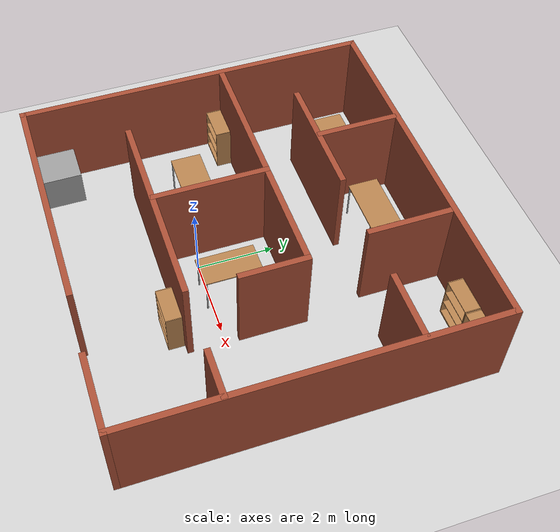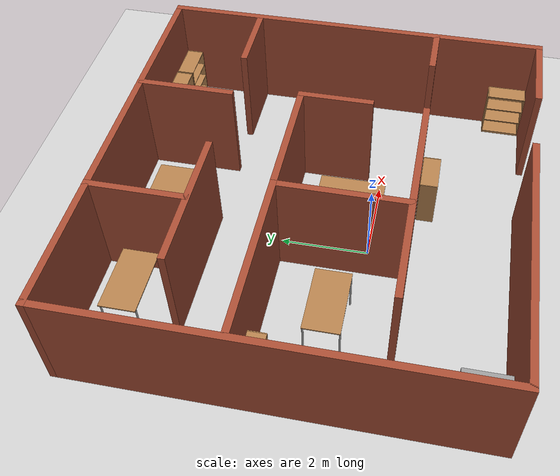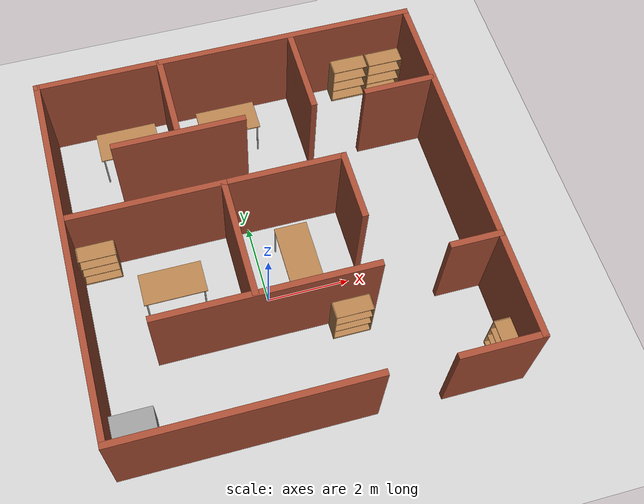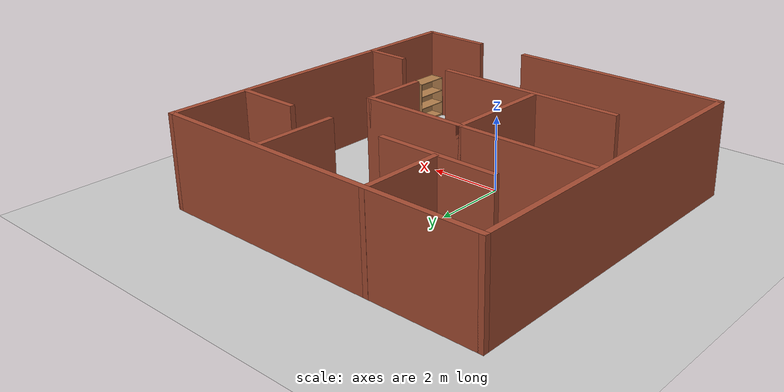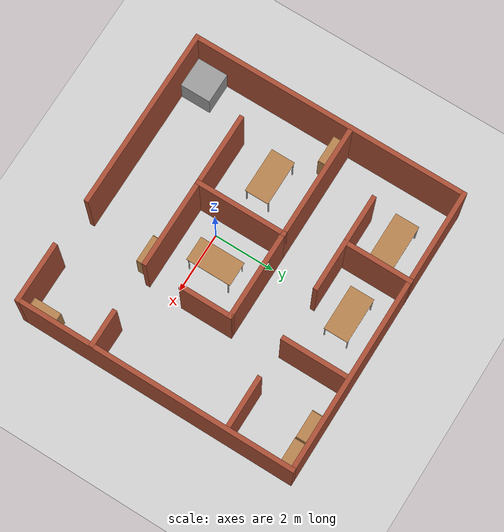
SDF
<sdf version="1.6">
 <world name="default">
  <light name="sun" type="directional">
   <pose>0 0 10 0 -0 0</pose>
   <diffuse>0.8 0.8 0.8 1</diffuse>
   <specular>0.2 0.2 0.2 1</specular>
   <attenuation>
    <range>1000</range>
    <constant>0.9</constant>
    <linear>0.01</linear>
    <quadratic>0.001</quadratic>
   </attenuation>
   <direction>-0.5 0.1 -0.9</direction>
  </light>
  <model name="ground_plane">
   <static>1</static>
   <link name="link">
    <collision name="collision">
     <geometry><plane><normal>0 0 1</normal><size>100 100</size></plane></geometry>
     <surface>
      <contact><collide_bitmask>65535</collide_bitmask></contact>
      <friction><ode><mu>100</mu><mu2>50</mu2></ode></friction>
     </surface>
    </collision>
    <visual name="visual">
     <cast_shadows>0</cast_shadows>
     <geometry><plane><normal>0 0 1</normal><size>100 100</size></plane></geometry>
     <material>
      <script><uri>file://media/materials/scripts/gazebo.material</uri><name>Gazebo/Grey</name></script>
     </material>
    </visual>
   </link>
  </model>
  <gravity>0 0 -9.8</gravity>
  <magnetic_field>6e-06 2.3e-05 -4.2e-05</magnetic_field>
  <atmosphere type="adiabatic"/>
  <physics name="default_physics" default="0" type="ode">
   <max_step_size>0.001</max_step_size>
   <real_time_factor>1</real_time_factor>
   <real_time_update_rate>1000</real_time_update_rate>
  </physics>
  <scene><ambient>0.4 0.4 0.4 1</ambient><background>0.7 0.7 0.7 1</background><shadows>1</shadows></scene>
  <audio><device>default</device></audio>
  <spherical_coordinates>
   <surface_model>EARTH_WGS84</surface_model>
   <latitude_deg>0</latitude_deg>
   <longitude_deg>0</longitude_deg>
   <elevation>0</elevation>
   <heading_deg>0</heading_deg>
  </spherical_coordinates>
  <model name="environment2">
   <pose>0.427414 1.20836 -0 0 -0 0</pose>
   <link name="Wall_1">
    <collision name="Wall_1_Collision">
     <geometry><box><size>6 0.15 2.5</size></box></geometry>
     <pose>0 0 1.25 0 -0 0</pose>
    </collision>
    <visual name="Wall_1_Visual">
     <pose>0 0 1.25 0 -0 0</pose>
     <geometry><box><size>6 0.15 2.5</size></box></geometry>
     <material>
      <script><uri>file://media/materials/scripts/gazebo.material</uri><name>Gazebo/Bricks</name></script>
      <ambient>1 1 1 1</ambient>
     </material>
     <meta><layer>0</layer></meta>
    </visual>
    <pose>-1.75 -4.50149 0 0 -0 0</pose>
   </link>
   <link name="Wall_14">
    <collision name="Wall_14_Collision">
     <geometry><box><size>9.5 0.15 2.5</size></box></geometry>
     <pose>0 0 1.25 0 -0 0</pose>
    </collision>
    <visual name="Wall_14_Visual">
     <pose>0 0 1.25 0 -0 0</pose>
     <geometry><box><size>9.5 0.15 2.5</size></box></geometry>
     <material>
      <script><uri>file://media/materials/scripts/gazebo.material</uri><name>Gazebo/Bricks</name></script>
      <ambient>1 1 1 1</ambient>
     </material>
     <meta><layer>0</layer></meta>
    </visual>
    <pose>-0 4.54851 0 0 -0 0</pose>
   </link>
   <link name="Wall_15">
    <collision name="Wall_15_Collision">
     <geometry><box><size>9.25 0.15 2.5</size></box></geometry>
     <pose>0 0 1.25 0 -0 0</pose>
    </collision>
    <visual name="Wall_15_Visual">
     <pose>0 0 1.25 0 -0 0</pose>
     <geometry><box><size>9.25 0.15 2.5</size></box></geometry>
     <material>
      <script><uri>file://media/materials/scripts/gazebo.material</uri><name>Gazebo/Bricks</name></script>
      <ambient>1 1 1 1</ambient>
     </material>
     <meta><layer>0</layer></meta>
    </visual>
    <pose>4.675 -0.001489 0 0 -0 -1.5708</pose>
   </link>
   <link name="Wall_16">
    <collision name="Wall_16_Collision">
     <geometry><box><size>2 0.15 2.5</size></box></geometry>
     <pose>0 0 1.25 0 -0 0</pose>
    </collision>
    <visual name="Wall_16_Visual">
     <pose>0 0 1.25 0 -0 0</pose>
     <geometry><box><size>2 0.15 2.5</size></box></geometry>
     <material>
      <script><uri>file://media/materials/scripts/gazebo.material</uri><name>Gazebo/Bricks</name></script>
      <ambient>1 1 1 1</ambient>
     </material>
     <meta><layer>0</layer></meta>
    </visual>
    <pose>3.75 -4.55149 0 0 -0 3.14159</pose>
   </link>
   <link name="Wall_19">
    <collision name="Wall_19_Collision">
     <geometry><box><size>3.75 0.15 2.5</size></box></geometry>
     <pose>0 0 1.25 0 -0 0</pose>
    </collision>
    <visual name="Wall_19_Visual">
     <pose>0 0 1.25 0 -0 0</pose>
     <geometry><box><size>3.75 0.15 2.5</size></box></geometry>
     <material>
      <script><uri>file://media/materials/scripts/gazebo.material</uri><name>Gazebo/Bricks</name></script>
      <ambient>1 1 1 1</ambient>
     </material>
     <meta><layer>0</layer></meta>
    </visual>
    <pose>-2.73858 0.787888 0 0 -0 0</pose>
   </link>
   <link name="Wall_20">
    <collision name="Wall_20_Collision">
     <geometry><box><size>3 0.15 2.5</size></box></geometry>
     <pose>0 0 1.25 0 -0 0</pose>
    </collision>
    <visual name="Wall_20_Visual">
     <pose>0 0 1.25 0 -0 0</pose>
     <geometry><box><size>3 0.15 2.5</size></box></geometry>
     <material>
      <script><uri>file://media/materials/scripts/gazebo.material</uri><name>Gazebo/Bricks</name></script>
      <ambient>1 1 1 1</ambient>
     </material>
     <meta><layer>0</layer></meta>
    </visual>
    <pose>-0.938579 -0.637112 0 0 -0 -1.5708</pose>
   </link>
   <link name="Wall_36">
    <collision name="Wall_36_Collision">
     <geometry><box><size>1.25 0.15 2.5</size></box></geometry>
     <pose>0 0 1.25 0 -0 0</pose>
    </collision>
    <visual name="Wall_36_Visual">
     <pose>0 0 1.25 0 -0 0</pose>
     <geometry><box><size>1.25 0.15 2.5</size></box></geometry>
     <material>
      <script><uri>file://media/materials/scripts/gazebo.material</uri><name>Gazebo/Bricks</name></script>
      <ambient>1 1 1 1</ambient>
     </material>
     <meta><layer>0</layer></meta>
    </visual>
    <pose>4.10191 -2.0643 0 0 -0 3.14159</pose>
   </link>
   <link name="Wall_38">
    <collision name="Wall_38_Collision">
     <geometry><box><size>3 0.15 2.5</size></box></geometry>
     <pose>0 0 1.25 0 -0 0</pose>
    </collision>
    <visual name="Wall_38_Visual">
     <pose>0 0 1.25 0 -0 0</pose>
     <geometry><box><size>3 0.15 2.5</size></box></geometry>
     <material>
      <script><uri>file://media/materials/scripts/gazebo.material</uri><name>Gazebo/Bricks</name></script>
      <ambient>1 1 1 1</ambient>
     </material>
     <meta><layer>0</layer></meta>
    </visual>
    <pose>0.486421 0.787888 0 0 -0 0</pose>
   </link>
   <link name="Wall_39">
    <collision name="Wall_39_Collision">
     <geometry><box><size>1.75 0.15 2.5</size></box></geometry>
     <pose>0 0 1.25 0 -0 0</pose>
    </collision>
    <visual name="Wall_39_Visual">
     <pose>0 0 1.25 0 -0 0</pose>
     <geometry><box><size>1.75 0.15 2.5</size></box></geometry>
     <material>
      <script><uri>file://media/materials/scripts/gazebo.material</uri><name>Gazebo/Bricks</name></script>
      <ambient>1 1 1 1</ambient>
     </material>
     <meta><layer>0</layer></meta>
    </visual>
    <pose>1.91142 -0.012112 0 0 -0 -1.5708</pose>
   </link>
   <link name="Wall_41">
    <collision name="Wall_41_Collision">
     <geometry><box><size>2.25 0.15 2.5</size></box></geometry>
     <pose>0 0 1.25 0 -0 0</pose>
    </collision>
    <visual name="Wall_41_Visual">
     <pose>0 0 1.25 0 -0 0</pose>
     <geometry><box><size>2.25 0.15 2.5</size></box></geometry>
     <material>
      <script><uri>file://media/materials/scripts/gazebo.material</uri><name>Gazebo/Bricks</name></script>
      <ambient>1 1 1 1</ambient>
     </material>
     <meta><layer>0</layer></meta>
    </visual>
    <pose>1.65155 3.45523 0 0 -0 -1.5708</pose>
   </link>
   <link name="Wall_43">
    <collision name="Wall_43_Collision">
     <geometry><box><size>1.75 0.15 2.5</size></box></geometry>
     <pose>0 0 1.25 0 -0 0</pose>
    </collision>
    <visual name="Wall_43_Visual">
     <pose>0 0 1.25 0 -0 0</pose>
     <geometry><box><size>1.75 0.15 2.5</size></box></geometry>
     <material>
      <script><uri>file://media/materials/scripts/gazebo.material</uri><name>Gazebo/Bricks</name></script>
      <ambient>1 1 1 1</ambient>
     </material>
     <meta><layer>0</layer></meta>
    </visual>
    <pose>3.80155 2.40523 0 0 -0 0</pose>
   </link>
   <link name="Wall_45">
    <collision name="Wall_45_Collision">
     <geometry><box><size>2.25 0.15 2.5</size></box></geometry>
     <pose>0 0 1.25 0 -0 0</pose>
    </collision>
    <visual name="Wall_45_Visual">
     <pose>0 0 1.25 0 -0 0</pose>
     <geometry><box><size>2.25 0.15 2.5</size></box></geometry>
     <material>
      <script><uri>file://media/materials/scripts/gazebo.material</uri><name>Gazebo/Bricks</name></script>
      <ambient>1 1 1 1</ambient>
     </material>
     <meta><layer>0</layer></meta>
    </visual>
    <pose>-1.65613 3.50149 0 0 -0 -1.5708</pose>
   </link>
   <link name="Wall_50">
    <collision name="Wall_50_Collision">
     <geometry><box><size>5.25 0.15 2.5</size></box></geometry>
     <pose>0 0 1.25 0 -0 0</pose>
    </collision>
    <visual name="Wall_50_Visual">
     <pose>0 0 1.25 0 -0 0</pose>
     <geometry><box><size>5.25 0.15 2.5</size></box></geometry>
     <material>
      <script><uri>file://media/materials/scripts/gazebo.material</uri><name>Gazebo/Bricks</name></script>
      <ambient>1 1 1 1</ambient>
     </material>
     <meta><layer>0</layer></meta>
    </visual>
    <pose>-0.679007 -2.08699 0 0 -0 0</pose>
   </link>
   <link name="Wall_55">
    <collision name="Wall_55_Collision">
     <geometry><box><size>3.25 0.15 2.5</size></box></geometry>
     <pose>0 0 1.25 0 -0 0</pose>
    </collision>
    <visual name="Wall_55_Visual">
     <pose>0 0 1.25 0 -0 0</pose>
     <geometry><box><size>3.25 0.15 2.5</size></box></geometry>
     <material>
      <script><uri>file://media/materials/scripts/gazebo.material</uri><name>Gazebo/Bricks</name></script>
      <ambient>1 1 1 1</ambient>
     </material>
     <meta><layer>0</layer></meta>
    </visual>
    <pose>-1.63873 2.40798 0 0 -0 0</pose>
   </link>
   <link name="Wall_6">
    <collision name="Wall_6_Collision">
     <geometry><box><size>9.2 0.15 2.5</size></box></geometry>
     <pose>0 0 1.25 0 -0 0</pose>
    </collision>
    <visual name="Wall_6_Visual">
     <pose>0 0 1.25 0 -0 0</pose>
     <geometry><box><size>9.2 0.15 2.5</size></box></geometry>
     <material>
      <script><uri>file://media/materials/scripts/gazebo.material</uri><name>Gazebo/Bricks</name></script>
      <ambient>1 1 1 1</ambient>
     </material>
     <meta><layer>0</layer></meta>
    </visual>
    <pose>-4.675 0.023511 0 0 -0 -1.5708</pose>
   </link>
   <static>1</static>
  </model>
  <model name="bookshelf">
   <static>1</static>
   <link name="link">
    <inertial><mass>1</mass></inertial>
    <collision name="back">
     <pose>0 0.005 0.6 0 -0 0</pose>
     <geometry><box><size>0.9 0.01 1.2</size></box></geometry>
    </collision>
    <visual name="visual1">
     <pose>0 0.005 0.6 0 -0 0</pose>
     <geometry><box><size>0.9 0.01 1.2</size></box></geometry>
     <material>
      <script><uri>file://media/materials/scripts/gazebo.material</uri><name>Gazebo/Wood</name></script>
     </material>
    </visual>
    <collision name="left_side">
     <pose>0.45 -0.195 0.6 0 -0 0</pose>
     <geometry><box><size>0.02 0.4 1.2</size></box></geometry>
    </collision>
    <visual name="visual2">
     <pose>0.45 -0.195 0.6 0 -0 0</pose>
     <geometry><box><size>0.02 0.4 1.2</size></box></geometry>
     <material>
      <script><uri>file://media/materials/scripts/gazebo.material</uri><name>Gazebo/Wood</name></script>
     </material>
    </visual>
    <collision name="right_side">
     <pose>-0.45 -0.195 0.6 0 -0 0</pose>
     <geometry><box><size>0.02 0.4 1.2</size></box></geometry>
    </collision>
    <visual name="visual3">
     <pose>-0.45 -0.195 0.6 0 -0 0</pose>
     <geometry><box><size>0.02 0.4 1.2</size></box></geometry>
     <material>
      <script><uri>file://media/materials/scripts/gazebo.material</uri><name>Gazebo/Wood</name></script>
     </material>
    </visual>
    <collision name="bottom">
     <pose>0 -0.195 0.03 0 -0 0</pose>
     <geometry><box><size>0.88 0.4 0.06</size></box></geometry>
    </collision>
    <visual name="visual4">
     <pose>0 -0.195 0.03 0 -0 0</pose>
     <geometry><box><size>0.88 0.4 0.06</size></box></geometry>
     <material>
      <script><uri>file://media/materials/scripts/gazebo.material</uri><name>Gazebo/Wood</name></script>
     </material>
    </visual>
    <collision name="top">
     <pose>0 -0.195 1.19 0 -0 0</pose>
     <geometry><box><size>0.88 0.4 0.02</size></box></geometry>
    </collision>
    <visual name="visual5">
     <pose>0 -0.195 1.19 0 -0 0</pose>
     <geometry><box><size>0.88 0.4 0.02</size></box></geometry>
     <material>
      <script><uri>file://media/materials/scripts/gazebo.material</uri><name>Gazebo/Wood</name></script>
     </material>
    </visual>
    <collision name="low_shelf">
     <pose>0 -0.195 0.43 0 -0 0</pose>
     <geometry><box><size>0.88 0.4 0.02</size></box></geometry>
    </collision>
    <visual name="visual6">
     <pose>0 -0.195 0.43 0 -0 0</pose>
     <geometry><box><size>0.88 0.4 0.02</size></box></geometry>
     <material>
      <script><uri>file://media/materials/scripts/gazebo.material</uri><name>Gazebo/Wood</name></script>
     </material>
    </visual>
    <collision name="high_shelf">
     <pose>0 -0.195 0.8 0 -0 0</pose>
     <geometry><box><size>0.88 0.4 0.02</size></box></geometry>
    </collision>
    <visual name="visual7">
     <pose>0 -0.195 0.8 0 -0 0</pose>
     <geometry><box><size>0.88 0.4 0.02</size></box></geometry>
     <material>
      <script><uri>file://media/materials/scripts/gazebo.material</uri><name>Gazebo/Wood</name></script>
     </material>
    </visual>
   </link>
   <pose>4.56216 5.65941 -0 0 -0 0</pose>
  </model>
  <model name="bookshelf_0">
   <static>1</static>
   <link name="link">
    <inertial><mass>1</mass></inertial>
    <collision name="back">
     <pose>0 0.005 0.6 0 -0 0</pose>
     <geometry><box><size>0.9 0.01 1.2</size></box></geometry>
    </collision>
    <visual name="visual1">
     <pose>0 0.005 0.6 0 -0 0</pose>
     <geometry><box><size>0.9 0.01 1.2</size></box></geometry>
     <material>
      <script><uri>file://media/materials/scripts/gazebo.material</uri><name>Gazebo/Wood</name></script>
     </material>
    </visual>
    <collision name="left_side">
     <pose>0.45 -0.195 0.6 0 -0 0</pose>
     <geometry><box><size>0.02 0.4 1.2</size></box></geometry>
    </collision>
    <visual name="visual2">
     <pose>0.45 -0.195 0.6 0 -0 0</pose>
     <geometry><box><size>0.02 0.4 1.2</size></box></geometry>
     <material>
      <script><uri>file://media/materials/scripts/gazebo.material</uri><name>Gazebo/Wood</name></script>
     </material>
    </visual>
    <collision name="right_side">
     <pose>-0.45 -0.195 0.6 0 -0 0</pose>
     <geometry><box><size>0.02 0.4 1.2</size></box></geometry>
    </collision>
    <visual name="visual3">
     <pose>-0.45 -0.195 0.6 0 -0 0</pose>
     <geometry><box><size>0.02 0.4 1.2</size></box></geometry>
     <material>
      <script><uri>file://media/materials/scripts/gazebo.material</uri><name>Gazebo/Wood</name></script>
     </material>
    </visual>
    <collision name="bottom">
     <pose>0 -0.195 0.03 0 -0 0</pose>
     <geometry><box><size>0.88 0.4 0.06</size></box></geometry>
    </collision>
    <visual name="visual4">
     <pose>0 -0.195 0.03 0 -0 0</pose>
     <geometry><box><size>0.88 0.4 0.06</size></box></geometry>
     <material>
      <script><uri>file://media/materials/scripts/gazebo.material</uri><name>Gazebo/Wood</name></script>
     </material>
    </visual>
    <collision name="top">
     <pose>0 -0.195 1.19 0 -0 0</pose>
     <geometry><box><size>0.88 0.4 0.02</size></box></geometry>
    </collision>
    <visual name="visual5">
     <pose>0 -0.195 1.19 0 -0 0</pose>
     <geometry><box><size>0.88 0.4 0.02</size></box></geometry>
     <material>
      <script><uri>file://media/materials/scripts/gazebo.material</uri><name>Gazebo/Wood</name></script>
     </material>
    </visual>
    <collision name="low_shelf">
     <pose>0 -0.195 0.43 0 -0 0</pose>
     <geometry><box><size>0.88 0.4 0.02</size></box></geometry>
    </collision>
    <visual name="visual6">
     <pose>0 -0.195 0.43 0 -0 0</pose>
     <geometry><box><size>0.88 0.4 0.02</size></box></geometry>
     <material>
      <script><uri>file://media/materials/scripts/gazebo.material</uri><name>Gazebo/Wood</name></script>
     </material>
    </visual>
    <collision name="high_shelf">
     <pose>0 -0.195 0.8 0 -0 0</pose>
     <geometry><box><size>0.88 0.4 0.02</size></box></geometry>
    </collision>
    <visual name="visual7">
     <pose>0 -0.195 0.8 0 -0 0</pose>
     <geometry><box><size>0.88 0.4 0.02</size></box></geometry>
     <material>
      <script><uri>file://media/materials/scripts/gazebo.material</uri><name>Gazebo/Wood</name></script>
     </material>
    </visual>
   </link>
   <pose>3.6217 5.66796 0 0 -0 0</pose>
  </model>
  <model name="table">
   <static>1</static>
   <link name="link">
    <collision name="surface">
     <pose>0 0 1 0 -0 0</pose>
     <geometry><box><size>1.5 0.8 0.03</size></box></geometry>
     <surface><friction><ode><mu>0.6</mu><mu2>0.6</mu2></ode></friction></surface>
    </collision>
    <visual name="visual1">
     <pose>0 0 1 0 -0 0</pose>
     <geometry><box><size>1.5 0.8 0.03</size></box></geometry>
     <material>
      <script><uri>file://media/materials/scripts/gazebo.material</uri><name>Gazebo/Wood</name></script>
     </material>
    </visual>
    <collision name="front_left_leg">
     <pose>0.68 0.38 0.5 0 -0 0</pose>
     <geometry><cylinder><radius>0.02</radius><length>1</length></cylinder></geometry>
    </collision>
    <visual name="front_left_leg">
     <pose>0.68 0.38 0.5 0 -0 0</pose>
     <geometry><cylinder><radius>0.02</radius><length>1</length></cylinder></geometry>
     <material>
      <script><uri>file://media/materials/scripts/gazebo.material</uri><name>Gazebo/Grey</name></script>
     </material>
    </visual>
    <collision name="front_right_leg">
     <pose>0.68 -0.38 0.5 0 -0 0</pose>
     <geometry><cylinder><radius>0.02</radius><length>1</length></cylinder></geometry>
    </collision>
    <visual name="front_right_leg">
     <pose>0.68 -0.38 0.5 0 -0 0</pose>
     <geometry><cylinder><radius>0.02</radius><length>1</length></cylinder></geometry>
     <material>
      <script><uri>file://media/materials/scripts/gazebo.material</uri><name>Gazebo/Grey</name></script>
     </material>
    </visual>
    <collision name="back_right_leg">
     <pose>-0.68 -0.38 0.5 0 -0 0</pose>
     <geometry><cylinder><radius>0.02</radius><length>1</length></cylinder></geometry>
    </collision>
    <visual name="back_right_leg">
     <pose>-0.68 -0.38 0.5 0 -0 0</pose>
     <geometry><cylinder><radius>0.02</radius><length>1</length></cylinder></geometry>
     <material>
      <script><uri>file://media/materials/scripts/gazebo.material</uri><name>Gazebo/Grey</name></script>
     </material>
    </visual>
    <collision name="back_left_leg">
     <pose>-0.68 0.38 0.5 0 -0 0</pose>
     <geometry><cylinder><radius>0.02</radius><length>1</length></cylinder></geometry>
    </collision>
    <visual name="back_left_leg">
     <pose>-0.68 0.38 0.5 0 -0 0</pose>
     <geometry><cylinder><radius>0.02</radius><length>1</length></cylinder></geometry>
     <material>
      <script><uri>file://media/materials/scripts/gazebo.material</uri><name>Gazebo/Grey</name></script>
     </material>
    </visual>
   </link>
   <pose>0.17217 4.68799 0 0 -0 0</pose>
  </model>
  <model name="table_0">
   <static>1</static>
   <link name="link">
    <collision name="surface">
     <pose>0 0 1 0 -0 0</pose>
     <geometry><box><size>1.5 0.8 0.03</size></box></geometry>
     <surface><friction><ode><mu>0.6</mu><mu2>0.6</mu2></ode></friction></surface>
    </collision>
    <visual name="visual1">
     <pose>0 0 1 0 -0 0</pose>
     <geometry><box><size>1.5 0.8 0.03</size></box></geometry>
     <material>
      <script><uri>file://media/materials/scripts/gazebo.material</uri><name>Gazebo/Wood</name></script>
     </material>
    </visual>
    <collision name="front_left_leg">
     <pose>0.68 0.38 0.5 0 -0 0</pose>
     <geometry><cylinder><radius>0.02</radius><length>1</length></cylinder></geometry>
    </collision>
    <visual name="front_left_leg">
     <pose>0.68 0.38 0.5 0 -0 0</pose>
     <geometry><cylinder><radius>0.02</radius><length>1</length></cylinder></geometry>
     <material>
      <script><uri>file://media/materials/scripts/gazebo.material</uri><name>Gazebo/Grey</name></script>
     </material>
    </visual>
    <collision name="front_right_leg">
     <pose>0.68 -0.38 0.5 0 -0 0</pose>
     <geometry><cylinder><radius>0.02</radius><length>1</length></cylinder></geometry>
    </collision>
    <visual name="front_right_leg">
     <pose>0.68 -0.38 0.5 0 -0 0</pose>
     <geometry><cylinder><radius>0.02</radius><length>1</length></cylinder></geometry>
     <material>
      <script><uri>file://media/materials/scripts/gazebo.material</uri><name>Gazebo/Grey</name></script>
     </material>
    </visual>
    <collision name="back_right_leg">
     <pose>-0.68 -0.38 0.5 0 -0 0</pose>
     <geometry><cylinder><radius>0.02</radius><length>1</length></cylinder></geometry>
    </collision>
    <visual name="back_right_leg">
     <pose>-0.68 -0.38 0.5 0 -0 0</pose>
     <geometry><cylinder><radius>0.02</radius><length>1</length></cylinder></geometry>
     <material>
      <script><uri>file://media/materials/scripts/gazebo.material</uri><name>Gazebo/Grey</name></script>
     </material>
    </visual>
    <collision name="back_left_leg">
     <pose>-0.68 0.38 0.5 0 -0 0</pose>
     <geometry><cylinder><radius>0.02</radius><length>1</length></cylinder></geometry>
    </collision>
    <visual name="back_left_leg">
     <pose>-0.68 0.38 0.5 0 -0 0</pose>
     <geometry><cylinder><radius>0.02</radius><length>1</length></cylinder></geometry>
     <material>
      <script><uri>file://media/materials/scripts/gazebo.material</uri><name>Gazebo/Grey</name></script>
     </material>
    </visual>
   </link>
   <pose>-2.39686 4.67561 0 0 -0 0</pose>
  </model>
  <model name="table_1">
   <static>1</static>
   <link name="link">
    <collision name="surface">
     <pose>0 0 1 0 -0 0</pose>
     <geometry><box><size>1.5 0.8 0.03</size></box></geometry>
     <surface><friction><ode><mu>0.6</mu><mu2>0.6</mu2></ode></friction></surface>
    </collision>
    <visual name="visual1">
     <pose>0 0 1 0 -0 0</pose>
     <geometry><box><size>1.5 0.8 0.03</size></box></geometry>
     <material>
      <script><uri>file://media/materials/scripts/gazebo.material</uri><name>Gazebo/Wood</name></script>
     </material>
    </visual>
    <collision name="front_left_leg">
     <pose>0.68 0.38 0.5 0 -0 0</pose>
     <geometry><cylinder><radius>0.02</radius><length>1</length></cylinder></geometry>
    </collision>
    <visual name="front_left_leg">
     <pose>0.68 0.38 0.5 0 -0 0</pose>
     <geometry><cylinder><radius>0.02</radius><length>1</length></cylinder></geometry>
     <material>
      <script><uri>file://media/materials/scripts/gazebo.material</uri><name>Gazebo/Grey</name></script>
     </material>
    </visual>
    <collision name="front_right_leg">
     <pose>0.68 -0.38 0.5 0 -0 0</pose>
     <geometry><cylinder><radius>0.02</radius><length>1</length></cylinder></geometry>
    </collision>
    <visual name="front_right_leg">
     <pose>0.68 -0.38 0.5 0 -0 0</pose>
     <geometry><cylinder><radius>0.02</radius><length>1</length></cylinder></geometry>
     <material>
      <script><uri>file://media/materials/scripts/gazebo.material</uri><name>Gazebo/Grey</name></script>
     </material>
    </visual>
    <collision name="back_right_leg">
     <pose>-0.68 -0.38 0.5 0 -0 0</pose>
     <geometry><cylinder><radius>0.02</radius><length>1</length></cylinder></geometry>
    </collision>
    <visual name="back_right_leg">
     <pose>-0.68 -0.38 0.5 0 -0 0</pose>
     <geometry><cylinder><radius>0.02</radius><length>1</length></cylinder></geometry>
     <material>
      <script><uri>file://media/materials/scripts/gazebo.material</uri><name>Gazebo/Grey</name></script>
     </material>
    </visual>
    <collision name="back_left_leg">
     <pose>-0.68 0.38 0.5 0 -0 0</pose>
     <geometry><cylinder><radius>0.02</radius><length>1</length></cylinder></geometry>
    </collision>
    <visual name="back_left_leg">
     <pose>-0.68 0.38 0.5 0 -0 0</pose>
     <geometry><cylinder><radius>0.02</radius><length>1</length></cylinder></geometry>
     <material>
      <script><uri>file://media/materials/scripts/gazebo.material</uri><name>Gazebo/Grey</name></script>
     </material>
    </visual>
   </link>
   <pose>-2.14703 0.548068 0 0 -0 0</pose>
  </model>
  <model name="bookshelf_1">
   <static>1</static>
   <link name="link">
    <inertial><mass>1</mass></inertial>
    <collision name="back">
     <pose>0 0.005 0.6 0 -0 0</pose>
     <geometry><box><size>0.9 0.01 1.2</size></box></geometry>
    </collision>
    <visual name="visual1">
     <pose>0 0.005 0.6 0 -0 0</pose>
     <geometry><box><size>0.9 0.01 1.2</size></box></geometry>
     <material>
      <script><uri>file://media/materials/scripts/gazebo.material</uri><name>Gazebo/Wood</name></script>
     </material>
    </visual>
    <collision name="left_side">
     <pose>0.45 -0.195 0.6 0 -0 0</pose>
     <geometry><box><size>0.02 0.4 1.2</size></box></geometry>
    </collision>
    <visual name="visual2">
     <pose>0.45 -0.195 0.6 0 -0 0</pose>
     <geometry><box><size>0.02 0.4 1.2</size></box></geometry>
     <material>
      <script><uri>file://media/materials/scripts/gazebo.material</uri><name>Gazebo/Wood</name></script>
     </material>
    </visual>
    <collision name="right_side">
     <pose>-0.45 -0.195 0.6 0 -0 0</pose>
     <geometry><box><size>0.02 0.4 1.2</size></box></geometry>
    </collision>
    <visual name="visual3">
     <pose>-0.45 -0.195 0.6 0 -0 0</pose>
     <geometry><box><size>0.02 0.4 1.2</size></box></geometry>
     <material>
      <script><uri>file://media/materials/scripts/gazebo.material</uri><name>Gazebo/Wood</name></script>
     </material>
    </visual>
    <collision name="bottom">
     <pose>0 -0.195 0.03 0 -0 0</pose>
     <geometry><box><size>0.88 0.4 0.06</size></box></geometry>
    </collision>
    <visual name="visual4">
     <pose>0 -0.195 0.03 0 -0 0</pose>
     <geometry><box><size>0.88 0.4 0.06</size></box></geometry>
     <material>
      <script><uri>file://media/materials/scripts/gazebo.material</uri><name>Gazebo/Wood</name></script>
     </material>
    </visual>
    <collision name="top">
     <pose>0 -0.195 1.19 0 -0 0</pose>
     <geometry><box><size>0.88 0.4 0.02</size></box></geometry>
    </collision>
    <visual name="visual5">
     <pose>0 -0.195 1.19 0 -0 0</pose>
     <geometry><box><size>0.88 0.4 0.02</size></box></geometry>
     <material>
      <script><uri>file://media/materials/scripts/gazebo.material</uri><name>Gazebo/Wood</name></script>
     </material>
    </visual>
    <collision name="low_shelf">
     <pose>0 -0.195 0.43 0 -0 0</pose>
     <geometry><box><size>0.88 0.4 0.02</size></box></geometry>
    </collision>
    <visual name="visual6">
     <pose>0 -0.195 0.43 0 -0 0</pose>
     <geometry><box><size>0.88 0.4 0.02</size></box></geometry>
     <material>
      <script><uri>file://media/materials/scripts/gazebo.material</uri><name>Gazebo/Wood</name></script>
     </material>
    </visual>
    <collision name="high_shelf">
     <pose>0 -0.195 0.8 0 -0 0</pose>
     <geometry><box><size>0.88 0.4 0.02</size></box></geometry>
    </collision>
    <visual name="visual7">
     <pose>0 -0.195 0.8 0 -0 0</pose>
     <geometry><box><size>0.88 0.4 0.02</size></box></geometry>
     <material>
      <script><uri>file://media/materials/scripts/gazebo.material</uri><name>Gazebo/Wood</name></script>
     </material>
    </visual>
   </link>
   <pose>-3.71214 1.91858 -0 0 -0 0</pose>
  </model>
  <model name="table_2">
   <static>1</static>
   <link name="link">
    <collision name="surface">
     <pose>0 0 1 0 -0 0</pose>
     <geometry><box><size>1.5 0.8 0.03</size></box></geometry>
     <surface><friction><ode><mu>0.6</mu><mu2>0.6</mu2></ode></friction></surface>
    </collision>
    <visual name="visual1">
     <pose>0 0 1 0 -0 0</pose>
     <geometry><box><size>1.5 0.8 0.03</size></box></geometry>
     <material>
      <script><uri>file://media/materials/scripts/gazebo.material</uri><name>Gazebo/Wood</name></script>
     </material>
    </visual>
    <collision name="front_left_leg">
     <pose>0.68 0.38 0.5 0 -0 0</pose>
     <geometry><cylinder><radius>0.02</radius><length>1</length></cylinder></geometry>
    </collision>
    <visual name="front_left_leg">
     <pose>0.68 0.38 0.5 0 -0 0</pose>
     <geometry><cylinder><radius>0.02</radius><length>1</length></cylinder></geometry>
     <material>
      <script><uri>file://media/materials/scripts/gazebo.material</uri><name>Gazebo/Grey</name></script>
     </material>
    </visual>
    <collision name="front_right_leg">
     <pose>0.68 -0.38 0.5 0 -0 0</pose>
     <geometry><cylinder><radius>0.02</radius><length>1</length></cylinder></geometry>
    </collision>
    <visual name="front_right_leg">
     <pose>0.68 -0.38 0.5 0 -0 0</pose>
     <geometry><cylinder><radius>0.02</radius><length>1</length></cylinder></geometry>
     <material>
      <script><uri>file://media/materials/scripts/gazebo.material</uri><name>Gazebo/Grey</name></script>
     </material>
    </visual>
    <collision name="back_right_leg">
     <pose>-0.68 -0.38 0.5 0 -0 0</pose>
     <geometry><cylinder><radius>0.02</radius><length>1</length></cylinder></geometry>
    </collision>
    <visual name="back_right_leg">
     <pose>-0.68 -0.38 0.5 0 -0 0</pose>
     <geometry><cylinder><radius>0.02</radius><length>1</length></cylinder></geometry>
     <material>
      <script><uri>file://media/materials/scripts/gazebo.material</uri><name>Gazebo/Grey</name></script>
     </material>
    </visual>
    <collision name="back_left_leg">
     <pose>-0.68 0.38 0.5 0 -0 0</pose>
     <geometry><cylinder><radius>0.02</radius><length>1</length></cylinder></geometry>
    </collision>
    <visual name="back_left_leg">
     <pose>-0.68 0.38 0.5 0 -0 0</pose>
     <geometry><cylinder><radius>0.02</radius><length>1</length></cylinder></geometry>
     <material>
      <script><uri>file://media/materials/scripts/gazebo.material</uri><name>Gazebo/Grey</name></script>
     </material>
    </visual>
   </link>
   <pose>0.888352 0.563165 0 0 0 -1.5699</pose>
  </model>
  <model name="unit_box">
   <pose>-3.67259 -2.71812 0.499995 0 1e-05 5e-06</pose>
   <link name="link">
    <inertial>
     <mass>1</mass>
     <inertia>
      <ixx>0.166667</ixx>
      <ixy>0</ixy>
      <ixz>0</ixz>
      <iyy>0.166667</iyy>
      <iyz>0</iyz>
      <izz>0.166667</izz>
     </inertia>
    </inertial>
    <collision name="collision"><geometry><box><size>1 1 1</size></box></geometry></collision>
    <visual name="visual">
     <geometry><box><size>1 1 1</size></box></geometry>
     <material>
      <script><name>Gazebo/Grey</name><uri>file://media/materials/scripts/gazebo.material</uri></script>
     </material>
    </visual>
   </link>
  </model>
  <model name="bookshelf_2">
   <static>1</static>
   <link name="link">
    <inertial><mass>1</mass></inertial>
    <collision name="back">
     <pose>0 0.005 0.6 0 -0 0</pose>
     <geometry><box><size>0.9 0.01 1.2</size></box></geometry>
    </collision>
    <visual name="visual1">
     <pose>0 0.005 0.6 0 -0 0</pose>
     <geometry><box><size>0.9 0.01 1.2</size></box></geometry>
     <material>
      <script><uri>file://media/materials/scripts/gazebo.material</uri><name>Gazebo/Wood</name></script>
     </material>
    </visual>
    <collision name="left_side">
     <pose>0.45 -0.195 0.6 0 -0 0</pose>
     <geometry><box><size>0.02 0.4 1.2</size></box></geometry>
    </collision>
    <visual name="visual2">
     <pose>0.45 -0.195 0.6 0 -0 0</pose>
     <geometry><box><size>0.02 0.4 1.2</size></box></geometry>
     <material>
      <script><uri>file://media/materials/scripts/gazebo.material</uri><name>Gazebo/Wood</name></script>
     </material>
    </visual>
    <collision name="right_side">
     <pose>-0.45 -0.195 0.6 0 -0 0</pose>
     <geometry><box><size>0.02 0.4 1.2</size></box></geometry>
    </collision>
    <visual name="visual3">
     <pose>-0.45 -0.195 0.6 0 -0 0</pose>
     <geometry><box><size>0.02 0.4 1.2</size></box></geometry>
     <material>
      <script><uri>file://media/materials/scripts/gazebo.material</uri><name>Gazebo/Wood</name></script>
     </material>
    </visual>
    <collision name="bottom">
     <pose>0 -0.195 0.03 0 -0 0</pose>
     <geometry><box><size>0.88 0.4 0.06</size></box></geometry>
    </collision>
    <visual name="visual4">
     <pose>0 -0.195 0.03 0 -0 0</pose>
     <geometry><box><size>0.88 0.4 0.06</size></box></geometry>
     <material>
      <script><uri>file://media/materials/scripts/gazebo.material</uri><name>Gazebo/Wood</name></script>
     </material>
    </visual>
    <collision name="top">
     <pose>0 -0.195 1.19 0 -0 0</pose>
     <geometry><box><size>0.88 0.4 0.02</size></box></geometry>
    </collision>
    <visual name="visual5">
     <pose>0 -0.195 1.19 0 -0 0</pose>
     <geometry><box><size>0.88 0.4 0.02</size></box></geometry>
     <material>
      <script><uri>file://media/materials/scripts/gazebo.material</uri><name>Gazebo/Wood</name></script>
     </material>
    </visual>
    <collision name="low_shelf">
     <pose>0 -0.195 0.43 0 -0 0</pose>
     <geometry><box><size>0.88 0.4 0.02</size></box></geometry>
    </collision>
    <visual name="visual6">
     <pose>0 -0.195 0.43 0 -0 0</pose>
     <geometry><box><size>0.88 0.4 0.02</size></box></geometry>
     <material>
      <script><uri>file://media/materials/scripts/gazebo.material</uri><name>Gazebo/Wood</name></script>
     </material>
    </visual>
    <collision name="high_shelf">
     <pose>0 -0.195 0.8 0 -0 0</pose>
     <geometry><box><size>0.88 0.4 0.02</size></box></geometry>
    </collision>
    <visual name="visual7">
     <pose>0 -0.195 0.8 0 -0 0</pose>
     <geometry><box><size>0.88 0.4 0.02</size></box></geometry>
     <material>
      <script><uri>file://media/materials/scripts/gazebo.material</uri><name>Gazebo/Wood</name></script>
     </material>
    </visual>
   </link>
   <pose>5.00954 -2.79748 0 0 0 -1.57371</pose>
  </model>
  <model name="bookshelf_3">
   <static>1</static>
   <link name="link">
    <inertial><mass>1</mass></inertial>
    <collision name="back">
     <pose>0 0.005 0.6 0 -0 0</pose>
     <geometry><box><size>0.9 0.01 1.2</size></box></geometry>
    </collision>
    <visual name="visual1">
     <pose>0 0.005 0.6 0 -0 0</pose>
     <geometry><box><size>0.9 0.01 1.2</size></box></geometry>
     <material>
      <script><uri>file://media/materials/scripts/gazebo.material</uri><name>Gazebo/Wood</name></script>
     </material>
    </visual>
    <collision name="left_side">
     <pose>0.45 -0.195 0.6 0 -0 0</pose>
     <geometry><box><size>0.02 0.4 1.2</size></box></geometry>
    </collision>
    <visual name="visual2">
     <pose>0.45 -0.195 0.6 0 -0 0</pose>
     <geometry><box><size>0.02 0.4 1.2</size></box></geometry>
     <material>
      <script><uri>file://media/materials/scripts/gazebo.material</uri><name>Gazebo/Wood</name></script>
     </material>
    </visual>
    <collision name="right_side">
     <pose>-0.45 -0.195 0.6 0 -0 0</pose>
     <geometry><box><size>0.02 0.4 1.2</size></box></geometry>
    </collision>
    <visual name="visual3">
     <pose>-0.45 -0.195 0.6 0 -0 0</pose>
     <geometry><box><size>0.02 0.4 1.2</size></box></geometry>
     <material>
      <script><uri>file://media/materials/scripts/gazebo.material</uri><name>Gazebo/Wood</name></script>
     </material>
    </visual>
    <collision name="bottom">
     <pose>0 -0.195 0.03 0 -0 0</pose>
     <geometry><box><size>0.88 0.4 0.06</size></box></geometry>
    </collision>
    <visual name="visual4">
     <pose>0 -0.195 0.03 0 -0 0</pose>
     <geometry><box><size>0.88 0.4 0.06</size></box></geometry>
     <material>
      <script><uri>file://media/materials/scripts/gazebo.material</uri><name>Gazebo/Wood</name></script>
     </material>
    </visual>
    <collision name="top">
     <pose>0 -0.195 1.19 0 -0 0</pose>
     <geometry><box><size>0.88 0.4 0.02</size></box></geometry>
    </collision>
    <visual name="visual5">
     <pose>0 -0.195 1.19 0 -0 0</pose>
     <geometry><box><size>0.88 0.4 0.02</size></box></geometry>
     <material>
      <script><uri>file://media/materials/scripts/gazebo.material</uri><name>Gazebo/Wood</name></script>
     </material>
    </visual>
    <collision name="low_shelf">
     <pose>0 -0.195 0.43 0 -0 0</pose>
     <geometry><box><size>0.88 0.4 0.02</size></box></geometry>
    </collision>
    <visual name="visual6">
     <pose>0 -0.195 0.43 0 -0 0</pose>
     <geometry><box><size>0.88 0.4 0.02</size></box></geometry>
     <material>
      <script><uri>file://media/materials/scripts/gazebo.material</uri><name>Gazebo/Wood</name></script>
     </material>
    </visual>
    <collision name="high_shelf">
     <pose>0 -0.195 0.8 0 -0 0</pose>
     <geometry><box><size>0.88 0.4 0.02</size></box></geometry>
    </collision>
    <visual name="visual7">
     <pose>0 -0.195 0.8 0 -0 0</pose>
     <geometry><box><size>0.88 0.4 0.02</size></box></geometry>
     <material>
      <script><uri>file://media/materials/scripts/gazebo.material</uri><name>Gazebo/Wood</name></script>
     </material>
    </visual>
   </link>
   <pose>1.68222 -0.969958 0 0 -0 0</pose>
  </model>
 </world>
</sdf>
